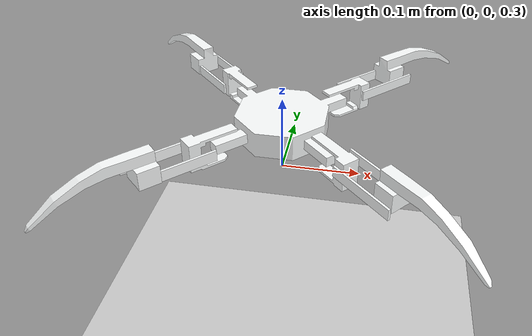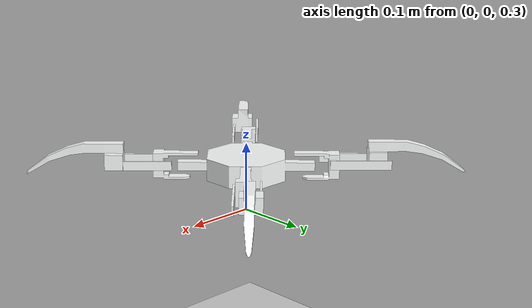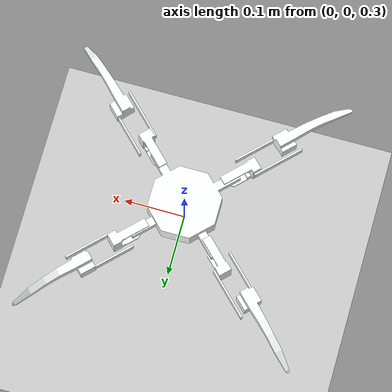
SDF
<?xml version="1.0" ?>

<sdf version="1.8">
  <world name="demo">

    <ignition>
      <multithreading>true</multithreading>
    </ignition>

    <physics name="default_physics" type="tpe">
      <!-- Aumente o passo máximo para acelerar a simulação (mas sem perder muita precisão) -->
      <max_step_size>0.05</max_step_size>
      <real_time_factor>1</real_time_factor>
      <!-- Taxa de atualização em tempo real (quanto maior, mais "rápida" a simulação, se suportado pela CPU) -->
      <real_time_update_rate>400</real_time_update_rate>
    </physics>

    <plugin name="ignition::gazebo::systems::RenderEnginePlugin"
        filename="ignition-gazebo-render-engine-system">
      <render_engine>ogre2</render_engine>
    </plugin>

    <plugin
      filename="ignition-gazebo-physics-system"
      name="ignition::gazebo::systems::Physics">
    </plugin>
    <plugin
      filename="ignition-gazebo-sensors-system"
      name="ignition::gazebo::systems::Sensors">
      <render_engine>ogre2</render_engine>
    </plugin>
    <plugin
      filename="ignition-gazebo-scene-broadcaster-system"
      name="ignition::gazebo::systems::SceneBroadcaster">
    </plugin>

    <light name="sun" type="directional">
      <cast_shadows>true</cast_shadows>
      <pose>0 0 10 0 0 0</pose>
      <diffuse>0.8 0.8 0.8 1</diffuse>
      <specular>0.2 0.2 0.2 1</specular>
      <attenuation>
        <range>1000</range>
        <constant>0.9</constant>
        <linear>0.01</linear>
        <quadratic>0.001</quadratic>
      </attenuation>
      <direction>-0.5 0.1 -0.9</direction>
    </light>

    <model name="ground_plane">
      <static>true</static>
      <link name="link">
        <collision name="collision">
          <geometry>
            <plane>
              <normal>0 0 1</normal>
              <size>100 100</size>
            </plane>
          </geometry>
        </collision>
        <visual name="visual">
          <geometry>
            <plane>
              <normal>0 0 1</normal>
              <size>100 100</size>
            </plane>
          </geometry>
          <material>
            <ambient>0.8 0.8 0.8 1</ambient>
            <diffuse>0.8 0.8 0.8 1</diffuse>
            <specular>0.8 0.8 0.8 1</specular>
          </material>
        </visual>
      </link>
    </model>

    <model name="laracna">
      <self_collide>true</self_collide>
      <pose>0 0 0.35 0 0 0</pose>
      <include merge="true">
        <uri>package://ros_gz_example_description/models/laracna</uri>
      </include>

      <!--Coxa -->
      <plugin filename="libignition-gazebo-joint-position-controller-system.so"
        name="ignition::gazebo::systems::JointPositionController">
        <joint_name>coxa_rb_j</joint_name>
        <topic>/model/laracna/joint/coxa_rb_j/cmd_pos</topic>
        <initial_position>0.0</initial_position>
        <p_gain>1.0</p_gain>
        <i_gain>0.1</i_gain>
        <d_gain>0.01</d_gain>
        <i_max>1.0</i_max>
        <i_min>-1.0</i_min>
        <cmd_max>1.0</cmd_max>
        <cmd_min>-1.0</cmd_min>
      </plugin>

      <plugin filename="libignition-gazebo-joint-position-controller-system.so"
        name="ignition::gazebo::systems::JointPositionController">
        <joint_name>coxa_lt_j</joint_name>
        <topic>/model/laracna/joint/coxa_lt_j/cmd_pos</topic>
        <initial_position>0.0</initial_position>
        <p_gain>1.0</p_gain>
        <i_gain>0.1</i_gain>
        <d_gain>0.01</d_gain>
        <i_max>1.0</i_max>
        <i_min>-1.0</i_min>
        <cmd_max>1.0</cmd_max>
        <cmd_min>-1.0</cmd_min>
      </plugin>

      <plugin filename="libignition-gazebo-joint-position-controller-system.so"
        name="ignition::gazebo::systems::JointPositionController">
        <joint_name>coxa_rt_j</joint_name>
        <topic>/model/laracna/joint/coxa_rt_j/cmd_pos</topic>
        <initial_position>0.0</initial_position>
        <p_gain>1.0</p_gain>
        <i_gain>0.1</i_gain>
        <d_gain>0.01</d_gain>
        <i_max>1.0</i_max>
        <i_min>-1.0</i_min>
        <cmd_max>1.0</cmd_max>
        <cmd_min>-1.0</cmd_min>
      </plugin>

      <plugin filename="libignition-gazebo-joint-position-controller-system.so"
        name="ignition::gazebo::systems::JointPositionController">
        <joint_name>coxa_lb_j</joint_name>
        <topic>/model/laracna/joint/coxa_lb_j/cmd_pos</topic>
        <initial_position>0.0</initial_position>
        <p_gain>1.0</p_gain>
        <i_gain>0.1</i_gain>
        <d_gain>0.01</d_gain>
        <i_max>1.0</i_max>
        <i_min>-1.0</i_min>
        <cmd_max>1.0</cmd_max>
        <cmd_min>-1.0</cmd_min>
      </plugin>

      <!-- Femur -->
      <plugin filename="libignition-gazebo-joint-position-controller-system.so"
        name="ignition::gazebo::systems::JointPositionController">
        <joint_name>femur_lb_j</joint_name>
        <topic>/model/laracna/joint/femur_lb_j/cmd_pos</topic>
        <initial_position>0.0</initial_position>
        <p_gain>1.0</p_gain>
        <i_gain>0.1</i_gain>
        <d_gain>0.01</d_gain>
        <i_max>1.0</i_max>
        <i_min>-1.0</i_min>
        <cmd_max>1.0</cmd_max>
        <cmd_min>-1.0</cmd_min>
      </plugin>

      <plugin filename="libignition-gazebo-joint-position-controller-system.so"
        name="ignition::gazebo::systems::JointPositionController">
        <joint_name>femur_lt_j</joint_name>
        <topic>/model/laracna/joint/femur_lt_j/cmd_pos</topic>
        <initial_position>0.0</initial_position>
        <p_gain>1.0</p_gain>
        <i_gain>0.1</i_gain>
        <d_gain>0.01</d_gain>
        <i_max>1.0</i_max>
        <i_min>-1.0</i_min>
        <cmd_max>1.0</cmd_max>
        <cmd_min>-1.0</cmd_min>
      </plugin>

      <plugin filename="libignition-gazebo-joint-position-controller-system.so"
        name="ignition::gazebo::systems::JointPositionController">
        <joint_name>femur_rt_j</joint_name>
        <topic>/model/laracna/joint/femur_rt_j/cmd_pos</topic>
        <initial_position>0.0</initial_position>
        <p_gain>1.0</p_gain>
        <i_gain>0.1</i_gain>
        <d_gain>0.01</d_gain>
        <i_max>1.0</i_max>
        <i_min>-1.0</i_min>
        <cmd_max>1.0</cmd_max>
        <cmd_min>-1.0</cmd_min>
      </plugin>

      <plugin filename="libignition-gazebo-joint-position-controller-system.so"
        name="ignition::gazebo::systems::JointPositionController">
        <joint_name>femur_rb_j</joint_name>
        <topic>/model/laracna/joint/femur_rb_j/cmd_pos</topic>
        <initial_position>0.0</initial_position>
        <p_gain>1.0</p_gain>
        <i_gain>0.1</i_gain>
        <d_gain>0.01</d_gain>
        <i_max>1.0</i_max>
        <i_min>-1.0</i_min>
        <cmd_max>1.0</cmd_max>
        <cmd_min>-1.0</cmd_min>
      </plugin>

      <!-- Tibia -->
      <plugin filename="libignition-gazebo-joint-position-controller-system.so"
        name="ignition::gazebo::systems::JointPositionController">
        <joint_name>tibia_lt_j</joint_name>
        <topic>/model/laracna/joint/tibia_lt_j/cmd_pos</topic>
        <initial_position>0.0</initial_position>
        <p_gain>1.0</p_gain>
        <i_gain>0.1</i_gain>
        <d_gain>0.01</d_gain>
        <i_max>1.0</i_max>
        <i_min>-1.0</i_min>
        <cmd_max>1.0</cmd_max>
        <cmd_min>-1.0</cmd_min>
      </plugin>

      <plugin filename="libignition-gazebo-joint-position-controller-system.so"
        name="ignition::gazebo::systems::JointPositionController">
        <joint_name>tibia_rt_j</joint_name>
        <topic>/model/laracna/joint/tibia_rt_j/cmd_pos</topic>
        <initial_position>0.0</initial_position>
        <p_gain>1.0</p_gain>
        <i_gain>0.1</i_gain>
        <d_gain>0.01</d_gain>
        <i_max>1.0</i_max>
        <i_min>-1.0</i_min>
        <cmd_max>1.0</cmd_max>
        <cmd_min>-1.0</cmd_min>
      </plugin>

      <plugin filename="libignition-gazebo-joint-position-controller-system.so"
        name="ignition::gazebo::systems::JointPositionController">
        <joint_name>tibia_rb_j</joint_name>
        <topic>/model/laracna/joint/tibia_rb_j/cmd_pos</topic>
        <initial_position>0.0</initial_position>
        <p_gain>1.0</p_gain>
        <i_gain>0.1</i_gain>
        <d_gain>0.01</d_gain>
        <i_max>1.0</i_max>
        <i_min>-1.0</i_min>
        <cmd_max>1.0</cmd_max>
        <cmd_min>-1.0</cmd_min>
      </plugin>

      <plugin filename="libignition-gazebo-joint-position-controller-system.so"
        name="ignition::gazebo::systems::JointPositionController">
        <joint_name>tibia_lt_j</joint_name>
        <topic>/model/laracna/joint/tibia_lt_j/cmd_pos</topic>
        <initial_position>0.0</initial_position>
        <p_gain>1.0</p_gain>
        <i_gain>0.1</i_gain>
        <d_gain>0.01</d_gain>
        <i_max>1.0</i_max>
        <i_min>-1.0</i_min>
        <cmd_max>1.0</cmd_max>
        <cmd_min>-1.0</cmd_min>
      </plugin>

      <plugin
        filename="ignition-gazebo-pose-publisher-system"
        name="ignition::gazebo::systems::PosePublisher">
        <publish_link_pose>true</publish_link_pose>
        <use_pose_vector_msg>true</use_pose_vector_msg>
        <static_publisher>true</static_publisher>
        <static_update_frequency>1</static_update_frequency>
      </plugin>

      <plugin
        filename="ignition-gazebo-odometry-publisher-system"
        name="ignition::gazebo::systems::OdometryPublisher">
        <odom_frame>laracna/odom</odom_frame>
        <robot_base_frame>laracna</robot_base_frame>
      </plugin>

      <plugin
        filename="ignition-gazebo-joint-state-publisher-system"
        name="ignition::gazebo::systems::JointStatePublisher">
      </plugin>

    </model>

  </world>
</sdf>

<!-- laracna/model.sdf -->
<sdf version='1.9'>
  <model name='laracna'>
    <link name='base_link'>
      <inertial>
        <inertia>
          <ixx>1.6952188219386e-06</ixx>
          <ixy>3.8328722716107099e-09</ixy>
          <ixz>-1.68767618013713e-08</ixz>
          <iyy>1.4858149033158899e-06</iyy>
          <iyz>2.6793634129095399e-08</iyz>
          <izz>1.7787742903464599e-06</izz>
        </inertia>
        <pose>-0.000549635703823248 0.000293483149070013 0.0112605913949021 0 0 0</pose>
        <mass>0.14927705759424001</mass>
      </inertial>
      <collision name='base_link_collision'>
        <pose>0 0 0 0 0 0</pose>
        <geometry>
            <box>
              <size>0.14 0.14 0.032</size>
            </box>
        </geometry>
      </collision>
      <visual name='base_link_visual'>
        <pose>0 0 0 0 0 0</pose>
        <geometry>
          <mesh>
            <scale>1 1 1</scale>
            <uri>package://ros_gz_example_description/meshes/base_link_collider.stl</uri>
          </mesh>
        </geometry>
        <material>
          <diffuse>0.990196 1 1 1</diffuse>
          <ambient>0.990196 1 1 1</ambient>
        </material>
      </visual>
      <self_collide>0</self_collide>
    </link>

    <joint name='coxa_lb_j' type='revolute'>
      <pose relative_to='base_link'>-0.06297700000000001 0.062553 0.0355 1.5708 0 2.3562</pose>
      <parent>base_link</parent>
      <child>coxa_lb</child>
      <axis>
        <xyz>0 1 0</xyz>
        <limit>
          <lower>-3.1416</lower>
          <upper>3.1416</upper>
        </limit>
        <dynamics>
          <damping>0.01</damping>
          <friction>0.01</friction>
          <spring_reference>0</spring_reference>
          <spring_stiffness>0</spring_stiffness>
        </dynamics>
      </axis>
      <physics>
          <ode>
              <implicit_spring_damper>1</implicit_spring_damper>
              <cfm_damping>1</cfm_damping>
              <limit>
                  <cfm>0</cfm>
                  <erp>0.2</erp>
              </limit>
          </ode>
      </physics>
    </joint>
    <link name='coxa_lb'>
      <pose relative_to='coxa_lb_j'>0 0 0 0 0 0</pose>
      <inertial>
        <pose>0.0311676418899572 -0.0171857800823059 -0.000875524395071652 0 0 0</pose>
        <mass>0.016883587648962601</mass>
        <inertia>
          <ixx>1.6952188219386e-06</ixx>
          <ixy>3.8328722716107099e-09</ixy>
          <ixz>-1.68767618013713e-08</ixz>
          <iyy>1.4858149033158899e-06</iyy>
          <iyz>2.6793634129095399e-08</iyz>
          <izz>1.7787742903464599e-06</izz>
        </inertia>
      </inertial>
      <collision name='coxa_lb_collision'>
        <pose>0 0 0 0 0 0</pose>
        <geometry>
          <box>
            <size>0.06 0.02 0.035</size>
          </box>
        </geometry>
      </collision>
      <visual name='coxa_lb_visual'>
        <pose>0 0 0 0 0 0</pose>
        <geometry>

          <mesh>
            <scale>1 1 1</scale>
            <uri>package://ros_gz_example_description/meshes/coxa_lb_collider.stl</uri>
          </mesh>
        </geometry>
        <material>
          <diffuse>0.990196 1 1 1</diffuse>
          <ambient>0.990196 1 1 1</ambient>
        </material>
      </visual>
      <self_collide>0</self_collide>
    </link>
    <joint name='femur_lb_j' type='revolute'>
      <pose relative_to='coxa_lb'>0.03814 -0.0126 -0.02153 0.0016676 0.0016676 0.0</pose>
      <parent>coxa_lb</parent>
      <child>femur_lb</child>
      <axis>
        <xyz>0 0 -1</xyz>
        <limit>
          <lower>-3.1416</lower>
          <upper>3.1416</upper>
        </limit>
        <dynamics>
          <damping>0.01</damping>
          <friction>0.01</friction>
          <spring_reference>0</spring_reference>
          <spring_stiffness>0</spring_stiffness>
        </dynamics>
      </axis>
      <physics>
          <ode>
              <implicit_spring_damper>1</implicit_spring_damper>
              <cfm_damping>1</cfm_damping>
              <limit>
                  <cfm>0</cfm>
                  <erp>0.2</erp>
              </limit>
          </ode>
      </physics>
    </joint>
    <link name='femur_lb'>
      <pose relative_to='femur_lb_j'>0 0 0 0 0 0</pose>
      <inertial>
        <pose>0.0300000000000009 -4.00077502987761e-06 0.0177499999999991 0 0 0</pose>
        <mass>0.0087586509816886208</mass>
        <inertia>
          <ixx>2.35107438626411e-07</ixx>
          <ixy>-3.6395946952333199e-22</ixy>
          <ixz>-3.1996158667402898e-09</ixz>
          <iyy>1.10345188527737e-06</iyy>
          <iyz>-2.6469779601696897e-23</iyz>
          <izz>1.32562067354555e-06</izz>
        </inertia>
      </inertial>
      <collision name='femur_lb_collision'>
        <pose>0 0 0 0 0 0</pose>
        <geometry>
          <box>
            <size>0.10 0.038 0.013</size>
          </box>
        </geometry>
      </collision>
      <visual name='femur_lb_visual'>
        <pose>0 0 0 0 0 0</pose>
        <geometry>
          <mesh>
            <scale>1 1 1</scale>
            <uri>package://ros_gz_example_description/meshes/femur_lb_collider.stl</uri>
          </mesh>
        </geometry>
        <material>
          <diffuse>0.990196 1 1 1</diffuse>
          <ambient>0.990196 1 1 1</ambient>
        </material>
      </visual>
      <self_collide>0</self_collide>
    </link>
    <joint name='tibia_lb_j' type='revolute'>
      <pose relative_to='femur_lb'>0.06 0 0.0355 0 0 0.0</pose>
      <parent>femur_lb</parent>
      <child>tibia_lb</child>
      <axis>
        <xyz>0 0 1</xyz>
        <limit>
          <lower>-3.1416</lower>
          <upper>3.1416</upper>
        </limit>
        <dynamics>
          <damping>0.01</damping>
          <friction>0.01</friction>
          <spring_reference>0</spring_reference>
          <spring_stiffness>0</spring_stiffness>
        </dynamics>
      </axis>
      <physics>
          <ode>
              <implicit_spring_damper>1</implicit_spring_damper>
              <cfm_damping>1</cfm_damping>
              <limit>
                  <cfm>0</cfm>
                  <erp>0.2</erp>
              </limit>
          </ode>
      </physics>
    </joint>
    <link name='tibia_lb'>
      <pose relative_to='tibia_lb_j'>0 0 0 0 0 0</pose>
      <inertial>
        <pose>0.0253809510265003 0.00775604947350703 -0.0209014173200577 0 0 0</pose>
        <mass>0.024465634890062701</mass>
        <inertia>
          <ixx>2.23438595150403e-06</ixx>
          <ixy>3.41065896314887e-06</ixy>
          <ixz>2.6777231332716699e-08</ixz>
          <iyy>1.8425419902973798e-05</iyy>
          <iyz>-1.7331887953733701e-08</iyz>
          <izz>1.9115314259691301e-05</izz>
        </inertia>
      </inertial>
      <collision name='tibia_lb_collision'>
        <pose>0 0 0 0 0 0</pose>
        <geometry>
          <box>
            <size>0.138 0.0148 0.036</size>
          </box>
        </geometry>
      </collision>
      <visual name='tibia_lb_visual'>
        <pose>0 0 0 0 0 0</pose>
        <geometry>
          <mesh>
            <scale>1 1 1</scale>
            <uri>package://ros_gz_example_description/meshes/tibia_lb_collider.stl</uri>
          </mesh>
        </geometry>
        <material>
          <diffuse>0.990196 1 1 1</diffuse>
          <ambient>0.990196 1 1 1</ambient>
        </material>
      </visual>
      <self_collide>0</self_collide>
    </link>
    <joint name='coxa_lt_j' type='revolute'>
      <pose relative_to='base_link'>0.062553 0.06297700000000001 0.0355 1.5708 0 0.7854000000000001</pose>
      <parent>base_link</parent>
      <child>coxa_lt</child>
      <axis>
        <xyz>0 1 0</xyz>
        <limit>
          <lower>-3.1416</lower>
          <upper>3.1416</upper>
        </limit>
        <dynamics>
          <damping>0.01</damping>
          <friction>0.01</friction>
          <spring_reference>0</spring_reference>
          <spring_stiffness>0</spring_stiffness>
        </dynamics>
      </axis>
      <physics>
          <ode>
              <implicit_spring_damper>1</implicit_spring_damper>
              <cfm_damping>1</cfm_damping>
              <limit>
                  <cfm>0</cfm>
                  <erp>0.2</erp>
              </limit>
          </ode>
      </physics>
    </joint>
    <link name='coxa_lt'>
      <pose relative_to='coxa_lt_j'>0 0 0 0 0 0</pose>
      <inertial>
        <pose>0.0311676418899575 -0.0171857800823059 -0.000875524395070736 0 0 0</pose>
        <mass>0.016883587648962601</mass>
        <inertia>
          <ixx>1.6952188219386e-06</ixx>
          <ixy>3.8328722716109299e-09</ixy>
          <ixz>-1.6876761801371101e-08</ixz>
          <iyy>1.4858149033158899e-06</iyy>
          <iyz>2.6793634129094899e-08</iyz>
          <izz>1.7787742903464599e-06</izz>
        </inertia>
      </inertial>
      <collision name='coxa_lt_collision'>
        <pose>0 0 0 0 0 0</pose>
        <geometry>
          <box>
            <size>0.06 0.02 0.035</size>
          </box>
        </geometry>
      </collision>
      <visual name='coxa_lt_visual'>
        <pose>0 0 0 0 0 0</pose>
        <geometry>
          <mesh>
            <scale>1 1 1</scale>
            <uri>package://ros_gz_example_description/meshes/coxa_lb_collider.stl</uri>
          </mesh>
        </geometry>
        <material>
          <diffuse>0.990196 1 1 1</diffuse>
          <ambient>0.990196 1 1 1</ambient>
        </material>
      </visual>
      <self_collide>0</self_collide>
    </link>
    <joint name='femur_lt_j' type='revolute'>
      <pose relative_to='coxa_lt'>0.03814 -0.0126 -0.02153 0.0016676 0.0016676 0.0</pose>
      <parent>coxa_lt</parent>
      <child>femur_lt</child>
      <axis>
        <xyz>0 0 -1</xyz>
        <limit>
          <lower>-3.1416</lower>
          <upper>3.1416</upper>
        </limit>
        <dynamics>
          <damping>0.01</damping>
          <friction>0.01</friction>
          <spring_reference>0</spring_reference>
          <spring_stiffness>0</spring_stiffness>
        </dynamics>
      </axis>
      <physics>
          <ode>
              <implicit_spring_damper>1</implicit_spring_damper>
              <cfm_damping>1</cfm_damping>
              <limit>
                  <cfm>0</cfm>
                  <erp>0.2</erp>
              </limit>
          </ode>
      </physics>
    </joint>
    <link name='femur_lt'>
      <pose relative_to='femur_lt_j'>0 0 0 0 0 0</pose>
      <inertial>
        <pose>0.0300000000000001 -4.00077503040497e-06 0.01775 0 0 0</pose>
        <mass>0.0087586509816886</mass>
        <inertia>
          <ixx>2.35107438626411e-07</ixx>
          <ixy>5.2277814713351302e-22</ixy>
          <ixz>-3.1996158667403002e-09</ixz>
          <iyy>1.10345188527737e-06</iyy>
          <iyz>-4.4998625322884696e-22</iyz>
          <izz>1.32562067354555e-06</izz>
        </inertia>
      </inertial>
      <collision name='femur_lt_collision'>
        <pose>0 0 0 0 0 0</pose>
        <geometry>
          <box>
            <size>0.10 0.038 0.013</size>
          </box>
        </geometry>
      </collision>
      <visual name='femur_lt_visual'>
        <pose>0 0 0 0 0 0</pose>
        <geometry>
          <mesh>
            <scale>1 1 1</scale>
            <uri>package://ros_gz_example_description/meshes/femur_lb_collider.stl</uri>
          </mesh>
        </geometry>
        <material>
          <diffuse>0.990196 1 1 1</diffuse>
          <ambient>0.990196 1 1 1</ambient>
        </material>
      </visual>
      <self_collide>0</self_collide>
    </link>
    <joint name='tibia_lt_j' type='revolute'>
      <pose relative_to='femur_lt'>0.06 0 0.0355 0 0 0.0</pose>
      <parent>femur_lt</parent>
      <child>tibia_lt</child>
      <axis>
        <xyz>0 0 1</xyz>
        <limit>
          <lower>-3.1416</lower>
          <upper>3.1416</upper>
        </limit>
        <dynamics>
          <damping>0.01</damping>
          <friction>0.01</friction>
          <spring_reference>0</spring_reference>
          <spring_stiffness>0</spring_stiffness>
        </dynamics>
      </axis>
      <physics>
          <ode>
              <implicit_spring_damper>1</implicit_spring_damper>
              <cfm_damping>1</cfm_damping>
              <limit>
                  <cfm>0</cfm>
                  <erp>0.2</erp>
              </limit>
          </ode>
      </physics>
    </joint>
    <link name='tibia_lt'>
      <pose relative_to='tibia_lt_j'>0 0 0 0 0 0</pose>
      <inertial>
        <pose>0.0253797905900474 0.00775572324591811 -0.0209014190388057 0 0 0</pose>
        <mass>0.024465640203770501</mass>
        <inertia>
          <ixx>2.23538745051556e-06</ixx>
          <ixy>3.4090374518825201e-06</ixy>
          <ixz>2.6777394321015401e-08</ixz>
          <iyy>1.8424422417696899e-05</iyy>
          <iyz>-1.7331806563168698e-08</iyz>
          <izz>1.9115318342821998e-05</izz>
        </inertia>
      </inertial>
      <collision name='tibia_lt_collision'>
        <pose>0 0 0 0 0 0</pose>
        <geometry>
          <box>
            <size>0.138 0.0148 0.036</size>
          </box>
        </geometry>
      </collision>
      <visual name='tibia_lt_visual'>
        <pose>0 0 0 0 0 0</pose>
        <geometry>
          <mesh>
            <scale>1 1 1</scale>
            <uri>package://ros_gz_example_description/meshes/tibia_lb_collider.stl</uri>
          </mesh>
        </geometry>
        <material>
          <diffuse>0.990196 1 1 1</diffuse>
          <ambient>0.990196 1 1 1</ambient>
        </material>
      </visual>
      <self_collide>0</self_collide>
    </link>
    <joint name='coxa_rb_j' type='revolute'>
      <pose relative_to='base_link'>-0.062553 -0.06297700000000001 0.0355 1.5708 0 -2.3562</pose>
      <parent>base_link</parent>
      <child>coxa_rb</child>
      <axis>
        <xyz>0 1 0</xyz>
        <limit>
          <lower>-3.1416</lower>
          <upper>3.1416</upper>
        </limit>
        <dynamics>
          <damping>0.01</damping>
          <friction>0.01</friction>
          <spring_reference>0</spring_reference>
          <spring_stiffness>0</spring_stiffness>
        </dynamics>
      </axis>
      <physics>
          <ode>
              <implicit_spring_damper>1</implicit_spring_damper>
              <cfm_damping>1</cfm_damping>
              <limit>
                  <cfm>0</cfm>
                  <erp>0.2</erp>
              </limit>
          </ode>
      </physics>
    </joint>
    <link name='coxa_rb'>
      <pose relative_to='coxa_rb_j'>0 0 0 0 0 0</pose>
      <inertial>
        <pose>0.0311676418899572 -0.0171857800823059 -0.000875524395071652 0 0 0</pose>
        <mass>0.016883587648962601</mass>
        <inertia>
          <ixx>1.6952188219386e-06</ixx>
          <ixy>3.8328722716109299e-09</ixy>
          <ixz>-1.6876761801371399e-08</ixz>
          <iyy>1.4858149033158899e-06</iyy>
          <iyz>2.6793634129095101e-08</iyz>
          <izz>1.7787742903464599e-06</izz>
        </inertia>
      </inertial>
      <collision name='coxa_rb_collision'>
        <pose>0 0 0 0 0 0</pose>
        <geometry>
          <box>
            <size>0.06 0.02 0.035</size>
          </box>
        </geometry>
      </collision>
      <visual name='coxa_rb_visual'>
        <pose>0 0 0 0 0 0</pose>
        <geometry>
          <mesh>
            <scale>1 1 1</scale>
            <uri>package://ros_gz_example_description/meshes/coxa_lb_collider.stl</uri>
          </mesh>
        </geometry>
        <material>
          <diffuse>0.990196 1 1 1</diffuse>
          <ambient>0.990196 1 1 1</ambient>
        </material>
      </visual>
    </link>
    <self_collide>0</self_collide>
    <joint name='femur_rb_j' type='revolute'>
      <pose relative_to='coxa_rb'>0.03814 -0.0126 -0.02153 0.0016676 0.0016676 0.0</pose>
      <parent>coxa_rb</parent>
      <child>femur_rb</child>
      <axis>
        <xyz>0 0 -1</xyz>
        <limit>
          <lower>-3.1416</lower>
          <upper>3.1416</upper>
        </limit>
        <dynamics>
          <damping>0.01</damping>
          <friction>0.01</friction>
          <spring_reference>0</spring_reference>
          <spring_stiffness>0</spring_stiffness>
        </dynamics>
      </axis>
      <physics>
          <ode>
              <implicit_spring_damper>1</implicit_spring_damper>
              <cfm_damping>1</cfm_damping>
              <limit>
                  <cfm>0</cfm>
                  <erp>0.2</erp>
              </limit>
          </ode>
      </physics>
    </joint>
    <link name='femur_rb'>
      <pose relative_to='femur_rb_j'>0 0 0 0 0 0</pose>
      <inertial>
        <pose>0.0300000000000003 -4.00077503072416e-06 0.0177499999999999 0 0 0</pose>
        <mass>0.0087586509816885896</mass>
        <inertia>
          <ixx>2.35107438626411e-07</ixx>
          <ixy>4.8307347773096797e-22</ixy>
          <ixz>-3.19961586674027e-09</ixz>
          <iyy>1.10345188527737e-06</iyy>
          <iyz>-1.32348898008484e-22</iyz>
          <izz>1.32562067354555e-06</izz>
        </inertia>
      </inertial>
      <collision name='femur_rb_collision'>
        <pose>0 0 0 0 0 0</pose>
        <geometry>
          <box>
            <size>0.10 0.038 0.013</size>
          </box>
        </geometry>
      </collision>
      <visual name='femur_rb_visual'>
        <pose>0 0 0 0 0 0</pose>
        <geometry>
          <mesh>
            <scale>1 1 1</scale>
            <uri>package://ros_gz_example_description/meshes/femur_lb_collider.stl</uri>
          </mesh>
        </geometry>
        <material>
          <diffuse>0.990196 1 1 1</diffuse>
          <ambient>0.990196 1 1 1</ambient>
        </material>
      </visual>
      <self_collide>0</self_collide>
    </link>
    <joint name='tibia_rb_j' type='revolute'>
      <pose relative_to='femur_rb'>0.06 0 0.0355 0 0 0.0</pose>
      <parent>femur_rb</parent>
      <child>tibia_rb</child>
      <axis>
        <xyz>0 0 1</xyz>
        <limit>
          <lower>-3.1416</lower>
          <upper>3.1416</upper>
        </limit>
        <dynamics>
          <damping>0.01</damping>
          <friction>0.01</friction>
          <spring_reference>0</spring_reference>
          <spring_stiffness>0</spring_stiffness>
        </dynamics>
      </axis>
      <physics>
          <ode>
              <implicit_spring_damper>1</implicit_spring_damper>
              <cfm_damping>1</cfm_damping>
              <limit>
                  <cfm>0</cfm>
                  <erp>0.2</erp>
              </limit>
          </ode>
      </physics>
    </joint>
    <link name='tibia_rb'>
      <pose relative_to='tibia_rb_j'>0 0 0 0 0 0</pose>
      <inertial>
        <pose>0.0253791910136747 0.00775560067495526 -0.0209014204080387 0 0 0</pose>
        <mass>0.024465633499710801</mass>
        <inertia>
          <ixx>2.2357718345824198e-06</ixx>
          <ixy>3.4081973690407799e-06</ixy>
          <ixz>2.6779975325357602e-08</ixz>
          <iyy>1.8424041465719599e-05</iyy>
          <iyz>-1.7332665172973501e-08</iyz>
          <izz>1.9115321876941701e-05</izz>
        </inertia>
      </inertial>
      <collision name='tibia_rb_collision'>
        <pose>0 0 0 0 0 0</pose>
        <geometry>
          <box>
            <size>0.138 0.0148 0.036</size>
          </box>
        </geometry>
      </collision>
      <visual name='tibia_rb_visual'>
        <pose>0 0 0 0 0 0</pose>
        <geometry>
          <mesh>
            <scale>1 1 1</scale>
            <uri>package://ros_gz_example_description/meshes/tibia_lb_collider.stl</uri>
          </mesh>
        </geometry>
        <material>
          <diffuse>0.990196 1 1 1</diffuse>
          <ambient>0.990196 1 1 1</ambient>
        </material>
      </visual>
      <self_collide>0</self_collide>
    </link>
    <joint name='coxa_rt_j' type='revolute'>
      <pose relative_to='base_link'>0.06297700000000001 -0.062553 0.0355 1.5708 0 -0.7854000000000001</pose>
      <parent>base_link</parent>
      <child>coxa_rt</child>
      <axis>
        <xyz>0 1 0</xyz>
        <limit>
          <lower>-3.1416</lower>
          <upper>3.1416</upper>
        </limit>
        <dynamics>
          <damping>0.01</damping>
          <friction>0.01</friction>
          <spring_reference>0</spring_reference>
          <spring_stiffness>0</spring_stiffness>
        </dynamics>
      </axis>
      <physics>
          <ode>
              <implicit_spring_damper>1</implicit_spring_damper>
              <cfm_damping>1</cfm_damping>
              <limit>
                  <cfm>0</cfm>
                  <erp>0.2</erp>
              </limit>
          </ode>
      </physics>
    </joint>
    <link name='coxa_rt'>
      <pose relative_to='coxa_rt_j'>0 0 0 0 0 0</pose>
      <inertial>
        <pose>0.0311676418899572 -0.0171857800823059 -0.000875524395071665 0 0 0</pose>
        <mass>0.016883587648962601</mass>
        <inertia>
          <ixx>1.6952188219386e-06</ixx>
          <ixy>3.8328722716107099e-09</ixy>
          <ixz>-1.68767618013712e-08</ixz>
          <iyy>1.4858149033159001e-06</iyy>
          <iyz>2.6793634129094998e-08</iyz>
          <izz>1.7787742903464599e-06</izz>
        </inertia>
      </inertial>
      <collision name='coxa_rt_collision'>
        <pose>0 0 0 0 0 0</pose>
        <geometry>
          <box>
            <size>0.06 0.02 0.035</size>
          </box>
        </geometry>
      </collision>
      <visual name='coxa_rt_visual'>
        <pose>0 0 0 0 0 0</pose>
        <geometry>
          <mesh>
            <scale>1 1 1</scale>
            <uri>package://ros_gz_example_description/meshes/coxa_lb_collider.stl</uri>
          </mesh>
        </geometry>
        <material>
          <diffuse>0.990196 1 1 1</diffuse>
          <ambient>0.990196 1 1 1</ambient>
        </material>
      </visual>
      <self_collide>0</self_collide>
    </link>
    <joint name='femur_rt_j' type='revolute'>
      <pose relative_to='coxa_rt'>0.03814 -0.0126 -0.02153 0.0016676 0.0016676 0.0</pose>
      <parent>coxa_rt</parent>
      <child>femur_rt</child>
      <axis>
        <xyz>0 0 -1</xyz>
        <limit>
          <lower>-3.1416</lower>
          <upper>3.1416</upper>
        </limit>
        <dynamics>
          <damping>0.01</damping>
          <friction>0.01</friction>
          <spring_reference>0</spring_reference>
          <spring_stiffness>0</spring_stiffness>
        </dynamics>
      </axis>
      <physics>
          <ode>
              <implicit_spring_damper>1</implicit_spring_damper>
              <cfm_damping>1</cfm_damping>
              <limit>
                  <cfm>0</cfm>
                  <erp>0.2</erp>
              </limit>
          </ode>
      </physics>
    </joint>
    <link name='femur_rt'>
      <pose relative_to='femur_rt_j'>0 0 0 0 0 0</pose>
      <inertial>
        <pose>0.0300000000000002 -4.00077503043272e-06 0.0177500000000002 0 0 0</pose>
        <mass>0.0087586509816886104</mass>
        <inertia>
          <ixx>2.35107438626411e-07</ixx>
          <ixy>3.1101991031993798e-22</ixy>
          <ixz>-3.1996158667405301e-09</ixz>
          <iyy>1.10345188527737e-06</iyy>
          <iyz>-5.2939559203393795e-23</iyz>
          <izz>1.32562067354555e-06</izz>
        </inertia>
      </inertial>
      <collision name='femur_rt_collision'>
        <pose>0 0 0 0 0 0</pose>
        <geometry>
          <box>
            <size>0.10 0.038 0.013</size>
          </box>
        </geometry>
      </collision>
      <visual name='femur_rt_visual'>
        <pose>0 0 0 0 0 0</pose>
        <geometry>
          <mesh>
            <scale>1 1 1</scale>
            <uri>package://ros_gz_example_description/meshes/femur_lb_collider.stl</uri>
          </mesh>
        </geometry>
        <material>
          <diffuse>0.990196 1 1 1</diffuse>
          <ambient>0.990196 1 1 1</ambient>
        </material>
      </visual>
      <self_collide>0</self_collide>
    </link>
    <joint name='tibia_rt_j' type='revolute'>
      <pose relative_to='femur_rt'>0.06 0 0.0355 0 0 0.0</pose>
      <parent>femur_rt</parent>
      <child>tibia_rt</child>
      <axis>
        <xyz>0 0 1</xyz>
        <limit>
          <lower>-3.1416</lower>
          <upper>3.1416</upper>
        </limit>
        <dynamics>
          <damping>0.01</damping>
          <friction>0.01</friction>
          <spring_reference>0</spring_reference>
          <spring_stiffness>0</spring_stiffness>
        </dynamics>
      </axis>
      <physics>
          <ode>
              <implicit_spring_damper>1</implicit_spring_damper>
              <cfm_damping>1</cfm_damping>
              <limit>
                  <cfm>0</cfm>
                  <erp>0.2</erp>
              </limit>
          </ode>
      </physics>
    </joint>
    <link name='tibia_rt'>
      <pose relative_to='tibia_rt_j'>0 0 0 0 0 0</pose>
      <inertial>
        <pose>0.0253787836129874 0.00775552687574976 -0.0209014202651868 0 0 0</pose>
        <mass>0.0244656378567027</mass>
        <inertia>
          <ixx>2.2360031452749398e-06</ixx>
          <ixy>3.4075650884258901e-06</ixy>
          <ixz>2.6777894508114501e-08</ixz>
          <iyy>1.8423794056790301e-05</iyy>
          <iyz>-1.7332541884754699e-08</iyz>
          <izz>1.9115305836752498e-05</izz>
        </inertia>
      </inertial>
      <collision name='tibia_rt_collision'>
        <pose>0 0 0 0 0 0</pose>
        <geometry>
          <box>
            <size>0.138 0.0148 0.036</size>
          </box>
        </geometry>
      </collision>
      <visual name='tibia_rt_visual'>
        <pose>0 0 0 0 0 0</pose>
        <geometry>
          <mesh>
            <scale>1 1 1</scale>
            <uri>package://ros_gz_example_description/meshes/tibia_lb_collider.stl</uri>
          </mesh>
        </geometry>
        <material>
          <diffuse>00.990196 1 1 1</diffuse>
          <ambient>0.990196 1 1 1</ambient>
        </material>
      </visual>
      <self_collide>0</self_collide>
    </link>

  </model>
</sdf>
